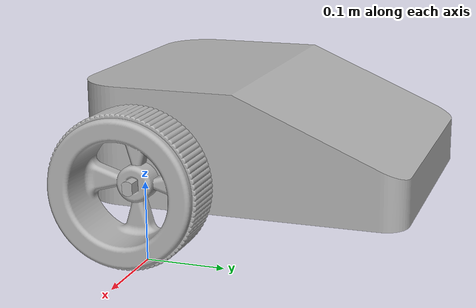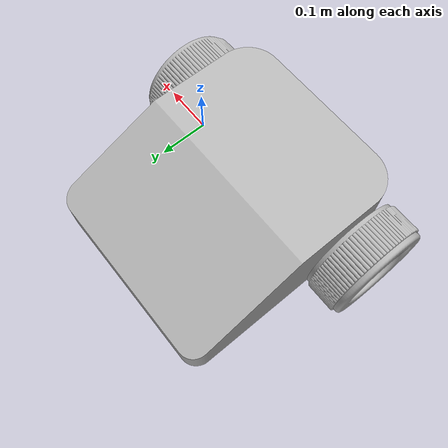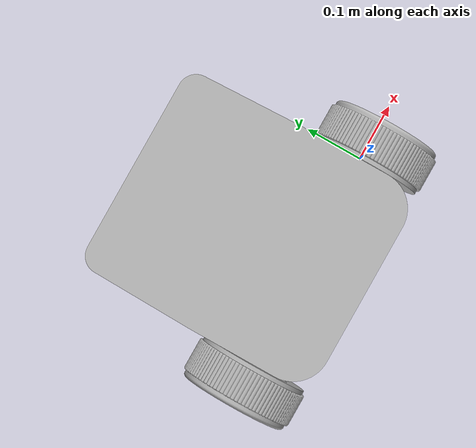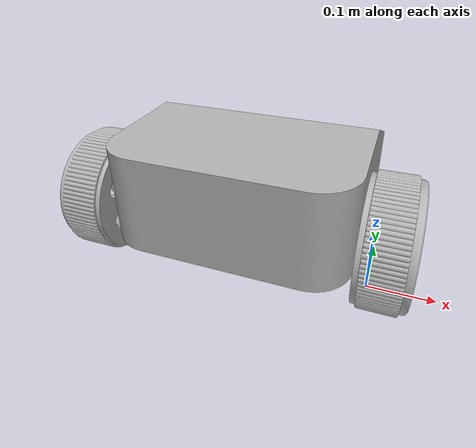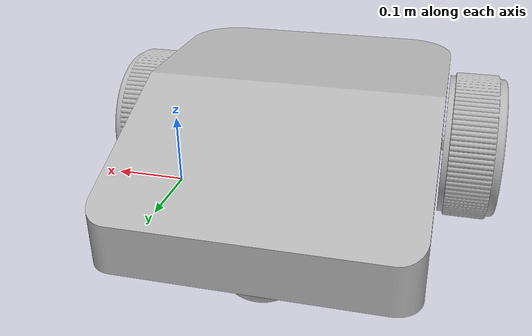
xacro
<?xml version="1.0" ?>
<robot name="prosty_robot" xmlns:xacro="http://www.ros.org/wiki/xacro">

<xacro:include filename="$(find prosty_robot_description)/urdf/materials.xacro" />
<xacro:include filename="$(find prosty_robot_description)/urdf/prosty_robot_control.xacro" />
<xacro:include filename="$(find prosty_robot_description)/urdf/prosty_robot.gazebo" />
<link name="base_link">
  <inertial>
    <origin xyz="-0.19829224614777685 0.08199024825660226 0.1270173201027048" rpy="0 0 0"/>
    <mass value="149.47616988047318"/>
    <inertia ixx="2.127403" iyy="1.838748" izz="3.457173" ixy="-0.0" iyz="0.179444" ixz="-0.0"/>
  </inertial>
  <visual>
    <origin xyz="0 0 0" rpy="0 0 0"/>
    <geometry>
      <mesh filename="package://prosty_robot_description/meshes/base_link.stl" scale="0.001 0.001 0.001"/>
    </geometry>
    <material name="silver"/>
  </visual>
  <collision>
    <origin xyz="0 0 0" rpy="0 0 0"/>
    <geometry>
      <mesh filename="package://prosty_robot_description/meshes/base_link.stl" scale="0.001 0.001 0.001"/>
    </geometry>
  </collision>
</link>

<link name="left_wheel_1">
  <inertial>
    <origin xyz="0.008673123407169026 -9.262828527719855e-06 -0.002994595230330202" rpy="0 0 0"/>
    <mass value="9.611364131600284"/>
    <inertia ixx="0.058456" iyy="0.033438" izz="0.033439" ixy="2e-06" iyz="2e-06" ixz="-1e-06"/>
  </inertial>
  <visual>
    <origin xyz="0.423292 0.011604 -0.100369" rpy="0 0 0"/>
    <geometry>
      <mesh filename="package://prosty_robot_description/meshes/left_wheel_1.stl" scale="0.001 0.001 0.001"/>
    </geometry>
    <material name="silver"/>
  </visual>
  <collision>
    <origin xyz="0.423292 0.011604 -0.100369" rpy="0 0 0"/>
    <geometry>
      <mesh filename="package://prosty_robot_description/meshes/left_wheel_1.stl" scale="0.001 0.001 0.001"/>
    </geometry>
  </collision>
</link>

<link name="right_wheel_1">
  <inertial>
    <origin xyz="-0.008673592508539638 -8.877490102771751e-06 -0.002994479464359198" rpy="0 0 0"/>
    <mass value="9.6113148239439"/>
    <inertia ixx="0.058455" iyy="0.033438" izz="0.033438" ixy="-2e-06" iyz="2e-06" ixz="1e-06"/>
  </inertial>
  <visual>
    <origin xyz="-0.026708 0.011604 -0.100369" rpy="0 0 0"/>
    <geometry>
      <mesh filename="package://prosty_robot_description/meshes/right_wheel_1.stl" scale="0.001 0.001 0.001"/>
    </geometry>
    <material name="silver"/>
  </visual>
  <collision>
    <origin xyz="-0.026708 0.011604 -0.100369" rpy="0 0 0"/>
    <geometry>
      <mesh filename="package://prosty_robot_description/meshes/right_wheel_1.stl" scale="0.001 0.001 0.001"/>
    </geometry>
  </collision>
</link>

<link name="caster_wheel_1">
  <inertial>
    <origin xyz="-2.461443244505812e-07 -0.07499971597832394 -0.023200574241590707" rpy="0 0 0"/>
    <mass value="2.5701014724196405"/>
    <inertia ixx="0.001934" iyy="0.001934" izz="0.002983" ixy="0.0" iyz="0.0" ixz="0.0"/>
  </inertial>
  <visual>
    <origin xyz="0.198292 -0.314989 -0.06304" rpy="0 0 0"/>
    <geometry>
      <mesh filename="package://prosty_robot_description/meshes/caster_wheel_1.stl" scale="0.001 0.001 0.001"/>
    </geometry>
    <material name="silver"/>
  </visual>
  <collision>
    <origin xyz="0.198292 -0.314989 -0.06304" rpy="0 0 0"/>
    <geometry>
      <mesh filename="package://prosty_robot_description/meshes/caster_wheel_1.stl" scale="0.001 0.001 0.001"/>
    </geometry>
  </collision>
</link>

<joint name="left_wheel_joint" type="continuous">
  <origin xyz="-0.423292 -0.011604 0.100369" rpy="0 0 0"/>
  <parent link="base_link"/>
  <child link="left_wheel_1"/>
  <axis xyz="-1.0 -0.0 0.0"/>
</joint>

<joint name="right_wheel_joint" type="continuous">
  <origin xyz="0.026708 -0.011604 0.100369" rpy="0 0 0"/>
  <parent link="base_link"/>
  <child link="right_wheel_1"/>
  <axis xyz="-1.0 0.0 0.0"/>
</joint>

<joint name="caster_wheel_joint" type="fixed">
  <origin xyz="-0.198292 0.314989 0.06304" rpy="0 0 0"/>
  <parent link="base_link"/>
  <child link="caster_wheel_1"/>
</joint>

</robot>

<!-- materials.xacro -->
<robot name="prosty_robot" xmlns:xacro="http://www.ros.org/wiki/xacro" >

<material name="silver">
  <color rgba="0.700 0.700 0.700 1.000"/>
</material>

</robot>

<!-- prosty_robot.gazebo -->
<robot name="prosty_robot" xmlns:xacro="http://www.ros.org/wiki/xacro" >

<xacro:property name="body_color" value="Gazebo/Silver" />

<gazebo reference="base_link">
  <material>${body_color}</material>
  <mu1>0.2</mu1>
  <mu2>0.2</mu2>
  <selfCollide>true</selfCollide>
  <gravity>true</gravity>
</gazebo>

<gazebo reference="left_wheel_1">
  <material>${body_color}</material>
  <mu1>1000000000000000.0</mu1>
    <mu2>1000000000000000.0</mu2>
    <kp>1000000000000.0</kp>
    <kd>10.0</kd>
    <minDepth>0.001</minDepth>
    <maxVel>0.1</maxVel>
    <fdir1>1 0 0</fdir1>
</gazebo>

<gazebo reference="right_wheel_1">
  <material>${body_color}</material>
  <mu1>1000000000000000.0</mu1>
    <mu2>1000000000000000.0</mu2>
    <kp>1000000000000.0</kp>
    <kd>10.0</kd>
    <minDepth>0.001</minDepth>
    <maxVel>0.1</maxVel>
    <fdir1>1 0 0</fdir1>
</gazebo>

<gazebo reference="caster_wheel_1">
  <material>${body_color}</material>
  <mu1>0.1</mu1>
  <mu2>0.1</mu2>
  <kp>1000000.0</kp>
  <kd>100.0</kd>
  <minDepth>0.001</minDepth>
  <maxVel>1.0</maxVel>
</gazebo>

<!-- ROS 2 Control -->
<gazebo>
  <plugin filename="libgazebo_ros2_control.so" name="gazebo_ros2_control">
    <robot_param>robot_description</robot_param>
    <robot_param_node>robot_state_publisher</robot_param_node>
    <parameters>$(find prosty_robot_description)/urdf/prosty_robot_controllers.yaml</parameters>
  </plugin>
</gazebo>

</robot>
